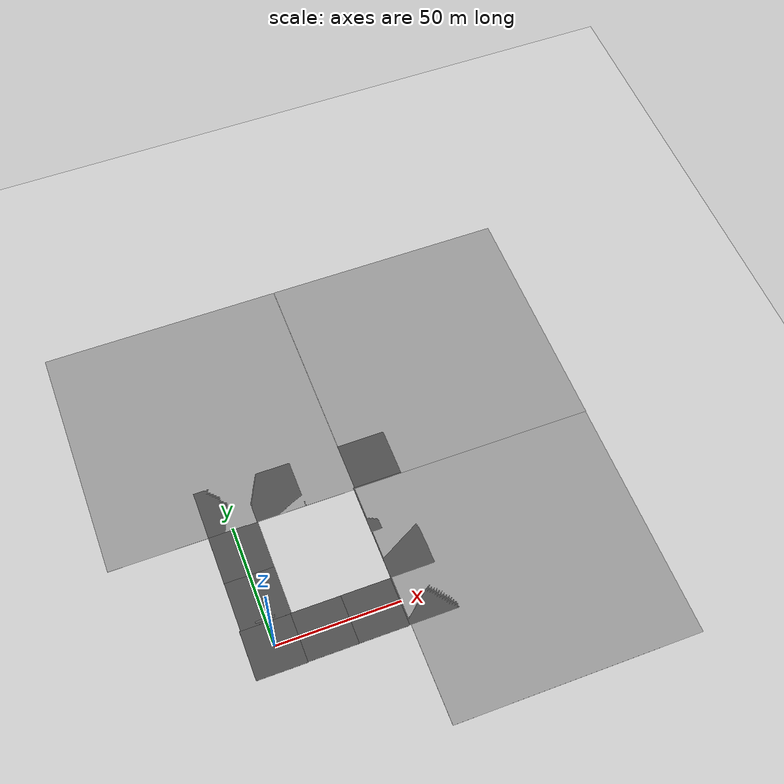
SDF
<sdf version="1.6">
 <world name="default">
  <model name="ground_plane">
   <static>1</static>
   <link name="link">
    <collision name="collision">
     <geometry><plane><normal>0 0 1</normal><size>100 100</size></plane></geometry>
     <surface><friction><ode><mu>100</mu><mu2>50</mu2></ode></friction></surface>
    </collision>
    <visual name="visual">
     <cast_shadows>0</cast_shadows>
     <geometry><plane><normal>0 0 1</normal><size>100 100</size></plane></geometry>
     <material>
      <script><uri>file://media/materials/scripts/gazebo.material</uri><name>Gazebo/Grey</name></script>
     </material>
    </visual>
   </link>
  </model>
  <gravity>0 0 -9.8</gravity>
  <magnetic_field>6e-06 2.3e-05 -4.2e-05</magnetic_field>
  <atmosphere type="adiabatic"/>
  <physics name="default_physics" default="0" type="ode">
   <max_step_size>0.001</max_step_size>
   <real_time_factor>1</real_time_factor>
   <real_time_update_rate>1000</real_time_update_rate>
  </physics>
  <scene><ambient>0.4 0.4 0.4 1</ambient><background>0.7 0.7 0.7 1</background><shadows>1</shadows></scene>
  <audio><device>default</device></audio>
  <spherical_coordinates>
   <surface_model>EARTH_WGS84</surface_model>
   <latitude_deg>0</latitude_deg>
   <longitude_deg>0</longitude_deg>
   <elevation>0</elevation>
   <heading_deg>0</heading_deg>
  </spherical_coordinates>
  <model name="asphalt_plane">
   <static>1</static>
   <link name="link">
    <collision name="collision"><geometry><box><size>20 20 0.1</size></box></geometry></collision>
    <visual name="visual">
     <cast_shadows>0</cast_shadows>
     <geometry><box><size>20 20 0.1</size></box></geometry>
     <material>
      <script>
       <uri>model://asphalt_plane/materials/scripts</uri>
       <uri>model://asphalt_plane/materials/textures</uri>
       <name>vrc/asphalt</name>
      </script>
     </material>
    </visual>
   </link>
   <pose>-0.606607 -0.198248 0 0 -0 0</pose>
  </model>
  <model name="asphalt_plane_clone">
   <static>1</static>
   <link name="link">
    <collision name="collision"><geometry><box><size>20 20 0.1</size></box></geometry></collision>
    <visual name="visual">
     <cast_shadows>0</cast_shadows>
     <geometry><box><size>20 20 0.1</size></box></geometry>
     <material>
      <script>
       <uri>model://asphalt_plane/materials/scripts</uri>
       <uri>model://asphalt_plane/materials/textures</uri>
       <name>vrc/asphalt</name>
      </script>
     </material>
    </visual>
   </link>
   <pose>19.3698 -0.017446 0 0 -0 0</pose>
  </model>
  <model name="asphalt_plane_clone_0">
   <static>1</static>
   <link name="link">
    <collision name="collision"><geometry><box><size>20 20 0.1</size></box></geometry></collision>
    <visual name="visual">
     <cast_shadows>0</cast_shadows>
     <geometry><box><size>20 20 0.1</size></box></geometry>
     <material>
      <script>
       <uri>model://asphalt_plane/materials/scripts</uri>
       <uri>model://asphalt_plane/materials/textures</uri>
       <name>vrc/asphalt</name>
      </script>
     </material>
    </visual>
   </link>
   <pose>39.3119 0.019577 0 0 -0 0</pose>
  </model>
  <model name="ground_plane_0">
   <static>1</static>
   <link name="link">
    <collision name="collision">
     <geometry><plane><normal>0 0 1</normal><size>100 100</size></plane></geometry>
     <surface>
      <contact><collide_bitmask>65535</collide_bitmask></contact>
      <friction><ode><mu>100</mu><mu2>50</mu2></ode></friction>
     </surface>
    </collision>
    <visual name="visual">
     <cast_shadows>0</cast_shadows>
     <geometry><plane><normal>0 0 1</normal><size>100 100</size></plane></geometry>
     <material>
      <script><uri>file://media/materials/scripts/gazebo.material</uri><name>Gazebo/Grey</name></script>
     </material>
    </visual>
   </link>
   <pose>99.8119 -0.012743 0 0 -0 0</pose>
  </model>
  <model name="ground_plane_1">
   <static>1</static>
   <link name="link">
    <collision name="collision">
     <geometry><plane><normal>0 0 1</normal><size>100 100</size></plane></geometry>
     <surface>
      <contact><collide_bitmask>65535</collide_bitmask></contact>
      <friction><ode><mu>100</mu><mu2>50</mu2></ode></friction>
     </surface>
    </collision>
    <visual name="visual">
     <cast_shadows>0</cast_shadows>
     <geometry><plane><normal>0 0 1</normal><size>100 100</size></plane></geometry>
     <material>
      <script><uri>file://media/materials/scripts/gazebo.material</uri><name>Gazebo/Grey</name></script>
     </material>
    </visual>
   </link>
   <pose>-0.11187 99.6243 0 0 -0 0</pose>
  </model>
  <model name="ground_plane_2">
   <static>1</static>
   <link name="link">
    <collision name="collision">
     <geometry><plane><normal>0 0 1</normal><size>100 100</size></plane></geometry>
     <surface>
      <contact><collide_bitmask>65535</collide_bitmask></contact>
      <friction><ode><mu>100</mu><mu2>50</mu2></ode></friction>
     </surface>
    </collision>
    <visual name="visual">
     <cast_shadows>0</cast_shadows>
     <geometry><plane><normal>0 0 1</normal><size>100 100</size></plane></geometry>
     <material>
      <script><uri>file://media/materials/scripts/gazebo.material</uri><name>Gazebo/Grey</name></script>
     </material>
    </visual>
   </link>
   <pose>99.9943 99.6471 0 0 -0 0</pose>
  </model>
  <model name="asphalt_plane_0">
   <static>1</static>
   <link name="link">
    <collision name="collision"><geometry><box><size>20 20 0.1</size></box></geometry></collision>
    <visual name="visual">
     <cast_shadows>0</cast_shadows>
     <geometry><box><size>20 20 0.1</size></box></geometry>
     <material>
      <script>
       <uri>model://asphalt_plane/materials/scripts</uri>
       <uri>model://asphalt_plane/materials/textures</uri>
       <name>vrc/asphalt</name>
      </script>
     </material>
    </visual>
   </link>
   <pose>59.2485 0.216347 0 0 -0 0</pose>
  </model>
  <model name="asphalt_plane_clone_2">
   <static>1</static>
   <link name="link">
    <collision name="collision"><geometry><box><size>20 20 0.1</size></box></geometry></collision>
    <visual name="visual">
     <cast_shadows>0</cast_shadows>
     <geometry><box><size>20 20 0.1</size></box></geometry>
     <material>
      <script>
       <uri>model://asphalt_plane/materials/scripts</uri>
       <uri>model://asphalt_plane/materials/textures</uri>
       <name>vrc/asphalt</name>
      </script>
     </material>
    </visual>
   </link>
   <pose>59.4612 20.2057 0 0 -0 0</pose>
  </model>
  <model name="asphalt_plane_clone_3">
   <static>1</static>
   <link name="link">
    <collision name="collision"><geometry><box><size>20 20 0.1</size></box></geometry></collision>
    <visual name="visual">
     <cast_shadows>0</cast_shadows>
     <geometry><box><size>20 20 0.1</size></box></geometry>
     <material>
      <script>
       <uri>model://asphalt_plane/materials/scripts</uri>
       <uri>model://asphalt_plane/materials/textures</uri>
       <name>vrc/asphalt</name>
      </script>
     </material>
    </visual>
   </link>
   <pose>59.456 59.8176 0 0 -0 0</pose>
  </model>
  <model name="asphalt_plane_clone_2_clone">
   <static>1</static>
   <link name="link">
    <collision name="collision"><geometry><box><size>20 20 0.1</size></box></geometry></collision>
    <visual name="visual">
     <cast_shadows>0</cast_shadows>
     <geometry><box><size>20 20 0.1</size></box></geometry>
     <material>
      <script>
       <uri>model://asphalt_plane/materials/scripts</uri>
       <uri>model://asphalt_plane/materials/textures</uri>
       <name>vrc/asphalt</name>
      </script>
     </material>
    </visual>
   </link>
   <pose>59.3662 40.3839 0 0 -0 0</pose>
  </model>
  <model name="asphalt_plane_clone_2_clone_7">
   <static>1</static>
   <link name="link">
    <collision name="collision"><geometry><box><size>20 20 0.1</size></box></geometry></collision>
    <visual name="visual">
     <cast_shadows>0</cast_shadows>
     <geometry><box><size>20 20 0.1</size></box></geometry>
     <material>
      <script>
       <uri>model://asphalt_plane/materials/scripts</uri>
       <uri>model://asphalt_plane/materials/textures</uri>
       <name>vrc/asphalt</name>
      </script>
     </material>
    </visual>
   </link>
   <pose>39.43 59.7941 0 0 -0 0</pose>
  </model>
  <model name="asphalt_plane_clone_2_clone_8">
   <static>1</static>
   <link name="link">
    <collision name="collision"><geometry><box><size>20 20 0.1</size></box></geometry></collision>
    <visual name="visual">
     <cast_shadows>0</cast_shadows>
     <geometry><box><size>20 20 0.1</size></box></geometry>
     <material>
      <script>
       <uri>model://asphalt_plane/materials/scripts</uri>
       <uri>model://asphalt_plane/materials/textures</uri>
       <name>vrc/asphalt</name>
      </script>
     </material>
    </visual>
   </link>
   <pose>19.4711 59.661 0 0 -0 0</pose>
  </model>
  <model name="asphalt_plane_clone_2_clone_9">
   <static>1</static>
   <link name="link">
    <collision name="collision"><geometry><box><size>20 20 0.1</size></box></geometry></collision>
    <visual name="visual">
     <cast_shadows>0</cast_shadows>
     <geometry><box><size>20 20 0.1</size></box></geometry>
     <material>
      <script>
       <uri>model://asphalt_plane/materials/scripts</uri>
       <uri>model://asphalt_plane/materials/textures</uri>
       <name>vrc/asphalt</name>
      </script>
     </material>
    </visual>
   </link>
   <pose>-0.190606 59.7523 0 0 -0 0</pose>
  </model>
  <model name="asphalt_plane_clone_2_clone_10">
   <static>1</static>
   <link name="link">
    <collision name="collision"><geometry><box><size>20 20 0.1</size></box></geometry></collision>
    <visual name="visual">
     <cast_shadows>0</cast_shadows>
     <geometry><box><size>20 20 0.1</size></box></geometry>
     <material>
      <script>
       <uri>model://asphalt_plane/materials/scripts</uri>
       <uri>model://asphalt_plane/materials/textures</uri>
       <name>vrc/asphalt</name>
      </script>
     </material>
    </visual>
   </link>
   <pose>-0.171831 19.8085 0 0 -0 0</pose>
  </model>
  <model name="asphalt_plane_clone_2_clone_11">
   <static>1</static>
   <link name="link">
    <collision name="collision"><geometry><box><size>20 20 0.1</size></box></geometry></collision>
    <visual name="visual">
     <cast_shadows>0</cast_shadows>
     <geometry><box><size>20 20 0.1</size></box></geometry>
     <material>
      <script>
       <uri>model://asphalt_plane/materials/scripts</uri>
       <uri>model://asphalt_plane/materials/textures</uri>
       <name>vrc/asphalt</name>
      </script>
     </material>
    </visual>
   </link>
   <pose>-0.221319 39.7631 0 0 -0 0</pose>
  </model>
  <model name="grey_wall">
   <static>1</static>
   <link name="link">
    <pose>0 0 1.4 0 -0 0</pose>
    <collision name="collision"><geometry><box><size>7.5 0.2 2.8</size></box></geometry></collision>
    <visual name="visual">
     <cast_shadows>0</cast_shadows>
     <geometry><box><size>7.5 0.2 2.8</size></box></geometry>
     <material>
      <script>
       <uri>model://grey_wall/materials/scripts</uri>
       <uri>model://grey_wall/materials/textures</uri>
       <name>vrc/grey_wall</name>
      </script>
     </material>
    </visual>
   </link>
   <pose>-0.255143 10.6772 0 0 -0 0</pose>
  </model>
  <light name="user_directional_light_0" type="directional">
   <pose>65.352 27.3297 1 0 -0 0</pose>
   <diffuse>0.5 0.5 0.5 1</diffuse>
   <specular>0.1 0.1 0.1 1</specular>
   <direction>0.1 0.1 -0.9</direction>
   <attenuation>
    <range>20</range>
    <constant>0.5</constant>
    <linear>0.01</linear>
    <quadratic>0.001</quadratic>
   </attenuation>
  </light>
 </world>
</sdf>
